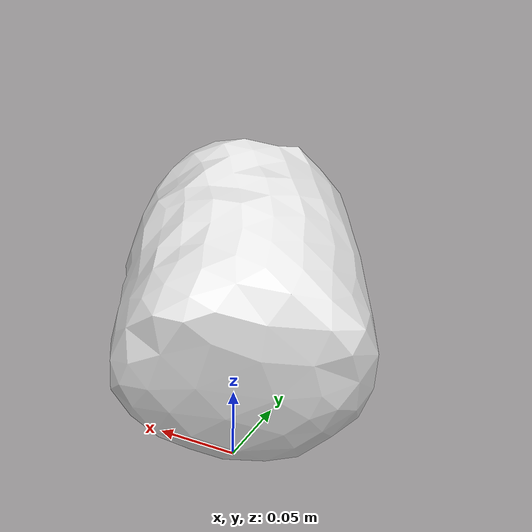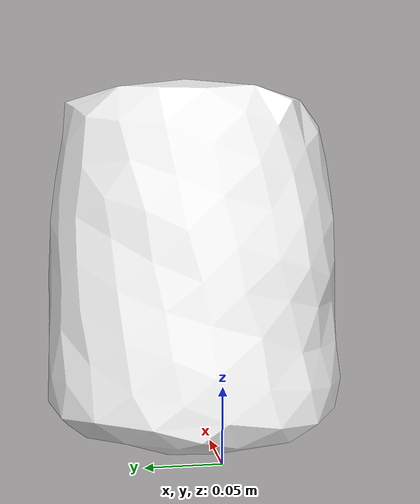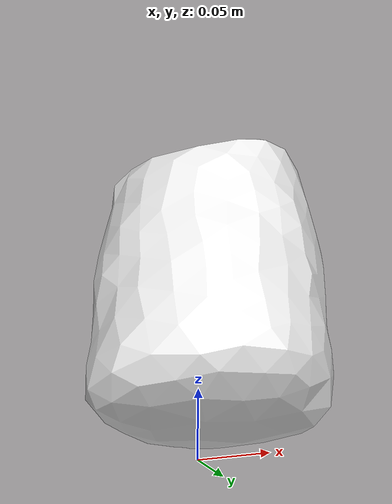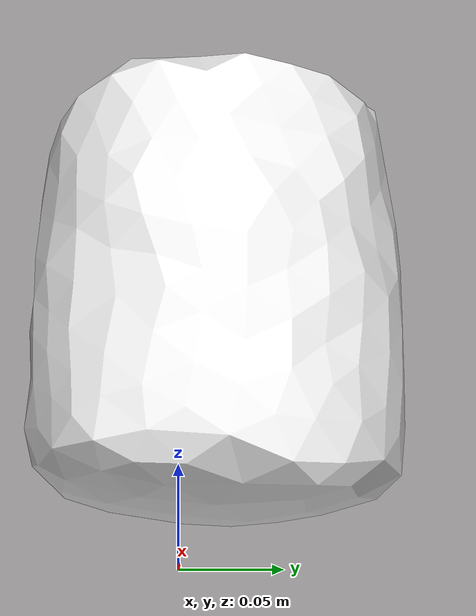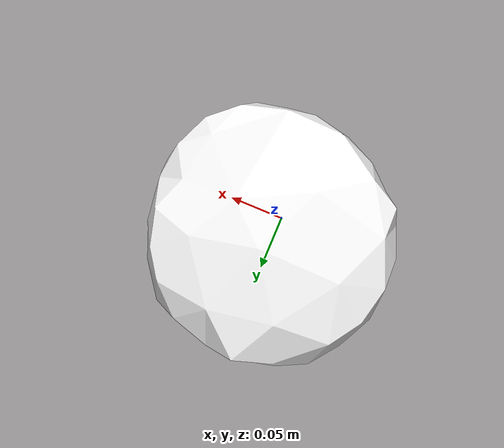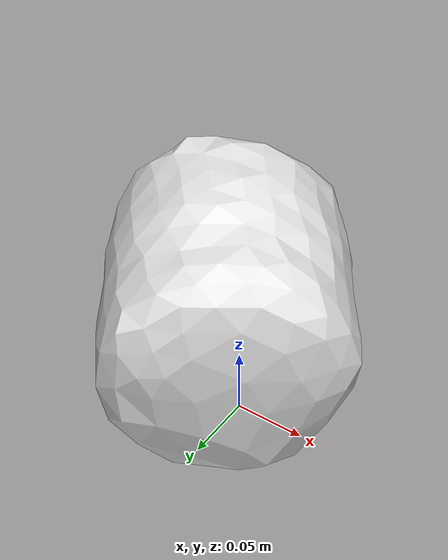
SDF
<?xml version="1.0" ?><sdf version="1.5"><model name="becks-barrel2">
<link name="link">
<pose>0 0 0 0 0 0</pose>
<inertial>
<pose>0.000872999 0.0174305 0.131072 0 0 0</pose>
<mass>0.53</mass>
<inertia>
<ixx>0.00347597</ixx>
<ixy>0</ixy><iyy>0.00346817</iyy>
<ixz>0</ixz><iyz>0</iyz><izz>0.00287699</izz>
</inertia>
</inertial>
<visual name="visual">
<pose>0 0 0 0 0 0</pose>
<geometry><mesh><uri>model://becks-barrel2/meshes/becks-barrel2.dae</uri></mesh></geometry>
<material><script><uri>file://media/materials/scripts/gazebo.material</uri><name>Gazebo/WhiteGlow</name></script></material></visual>
<collision name="collision"><pose>0 0 0 0 0 0</pose><geometry><mesh><uri>model://becks-barrel2/meshes/becks-barrel2.dae</uri></mesh></geometry>
<surface><friction><ode><mu>1.000000</mu><mu2>1.000000</mu2></ode></friction></surface>
</collision></link></model></sdf>
